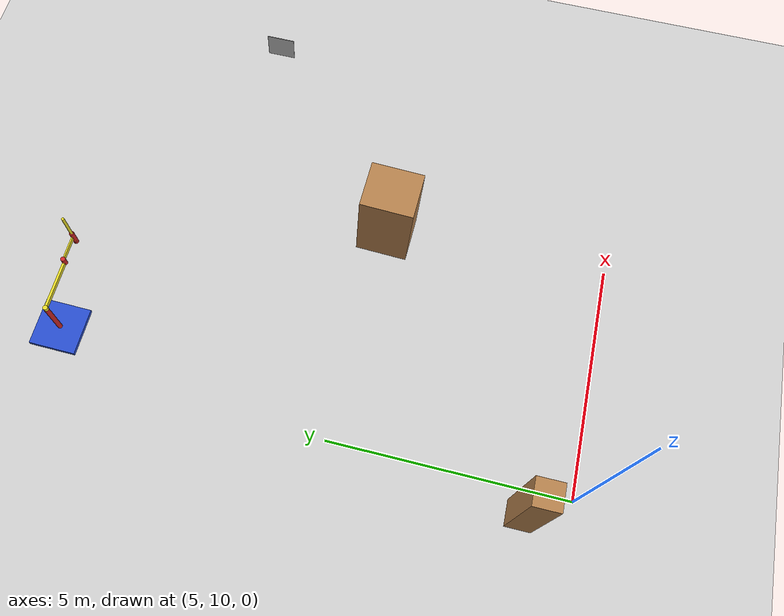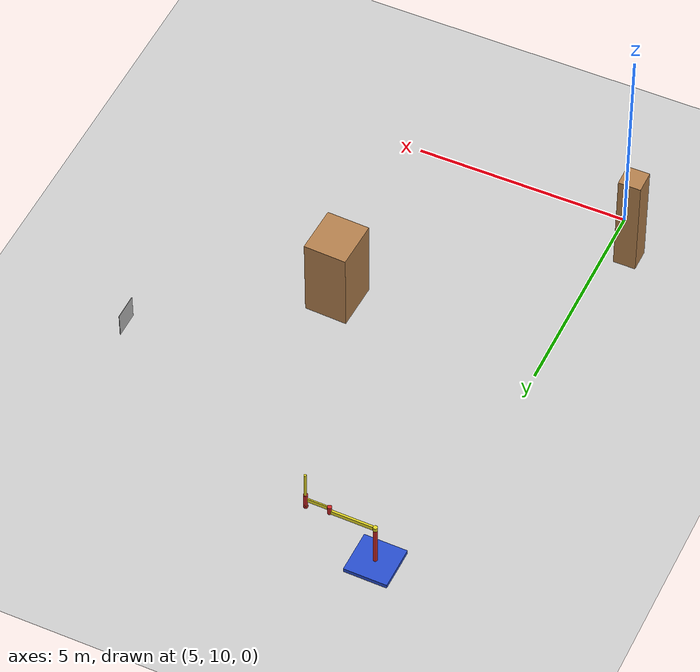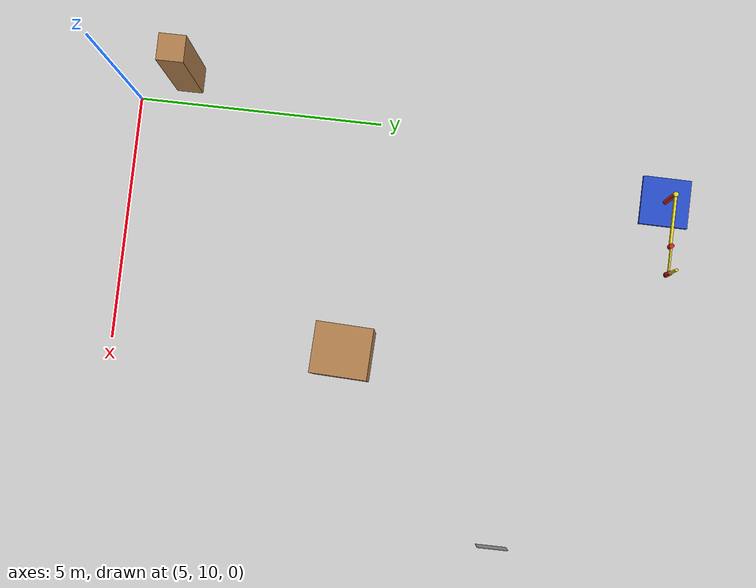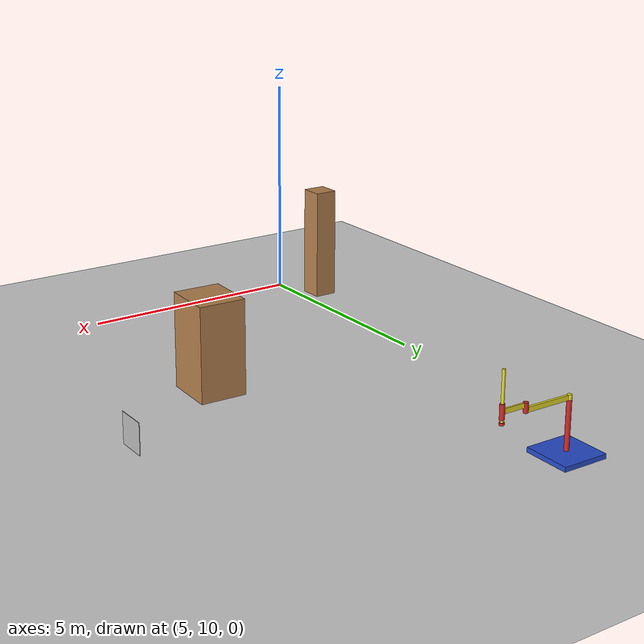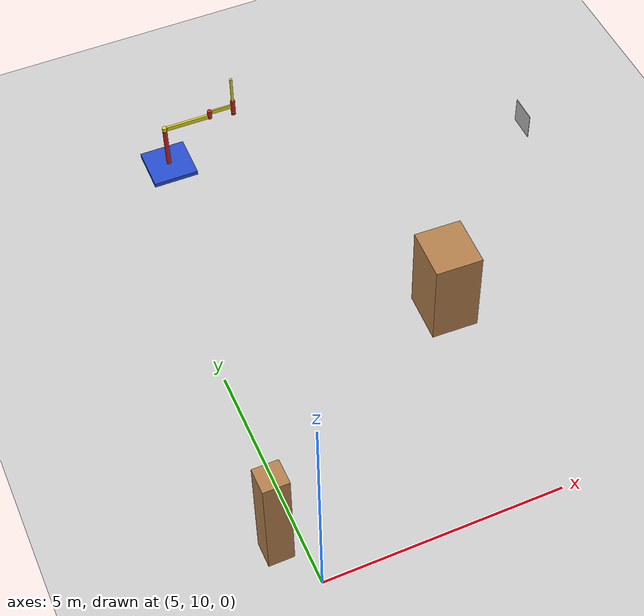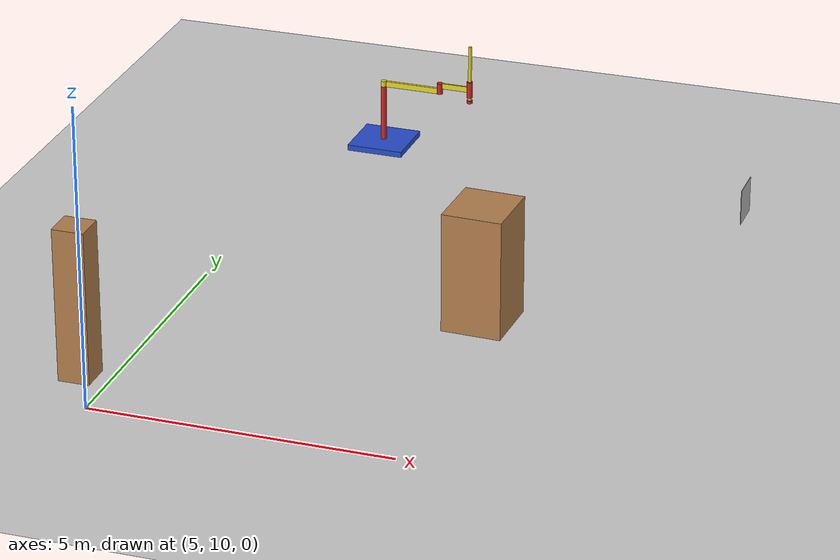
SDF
<sdf version="1.7">
 <world name="default">
  <model name="ground_plane">
   <static>1</static>
   <link name="link">
    <collision name="collision">
     <geometry><plane><normal>0 0 1</normal><size>25 25</size></plane></geometry>
     <surface><friction><ode><mu>100</mu><mu2>50</mu2></ode></friction></surface>
    </collision>
    <visual name="visual">
     <cast_shadows>0</cast_shadows>
     <geometry><plane><normal>0 0 1</normal><size>25 25</size></plane></geometry>
     <material>
      <script><uri>file://media/materials/scripts/gazebo.material</uri><name>Gazebo/Grey</name></script>
     </material>
    </visual>
   </link>
   <link name="startflag">
    <pose>0 0 0.115 0 -0 0</pose>
    <inertial>
     <mass>0.39</mass>
     <inertia><ixx>0.00058</ixx><ixy>0</ixy><ixz>0</ixz><iyy>0.00058</iyy><iyz>0</iyz><izz>0.00019</izz></inertia>
    </inertial>
    <collision name="collision"><geometry><box><size>1 1 0.01</size></box></geometry></collision>
    <visual name="visual">
     <geometry><box><size>1 1 0.01</size></box></geometry>
     <material>
      <script>
       <uri>model://apriltag/materials/scripts</uri>
       <uri>model://apriltag/materials/textures</uri>
       <name>startflag/Diffuse</name>
      </script>
     </material>
    </visual>
   </link>
  </model>
  <model name="unit_box_0_clone_0">
   <pose>4.48571 10.9785 1.29125 -2e-06 0 0.002903</pose>
   <link name="link">
    <inertial>
     <mass>1</mass>
     <inertia>
      <ixx>0.166667</ixx>
      <ixy>0</ixy>
      <ixz>0</ixz>
      <iyy>0.166667</iyy>
      <iyz>0</iyz>
      <izz>0.166667</izz>
     </inertia>
    </inertial>
    <collision name="collision"><geometry><box><size>0.52404 0.528614 2.5825</size></box></geometry></collision>
    <visual name="visual">
     <geometry><box><size>0.52404 0.528614 2.5825</size></box></geometry>
     <material>
      <script><uri>file://media/materials/scripts/gazebo.material</uri><name>Gazebo/Wood</name></script>
     </material>
    </visual>
   </link>
   <static>0</static>
  </model>
  <model name="static_apriltag_1">
   <link name="link">
    <pose>0 0 0 0 1.57 0</pose>
    <inertial>
     <mass>0.39</mass>
     <inertia><ixx>0.00058</ixx><ixy>0</ixy><ixz>0</ixz><iyy>0.00058</iyy><iyz>0</iyz><izz>0.00019</izz></inertia>
    </inertial>
    <collision name="collision"><geometry><box><size>0.6 0.6 0.01</size></box></geometry></collision>
    <visual name="visual">
     <geometry><box><size>0.6 0.6 0.01</size></box></geometry>
     <material>
      <script>
       <uri>model://apriltag/materials/scripts</uri>
       <uri>model://apriltag/materials/textures</uri>
       <name>apriltag/Diffuse1</name>
      </script>
     </material>
    </visual>
    <gravity>0</gravity>
   </link>
   <pose>13.2653 18.0901 1.2 0 -0 0</pose>
   <static>0</static>
   <pose>1.36256 0.459264 0 0 -0 0</pose>
  </model>
  <model name="simple_arm">
   <link name="arm_base">
    <inertial>
     <pose>0 0 0.00099 0 -0 0</pose>
     <inertia><ixx>1.11</ixx><ixy>0</ixy><ixz>0</ixz><iyy>100.11</iyy><iyz>0</iyz><izz>1.01</izz></inertia>
     <mass>101</mass>
    </inertial>
    <collision name="arm_base_geom">
     <pose>0 0 0.05 0 -0 0</pose>
     <geometry><box><size>1 1 0.1</size></box></geometry>
    </collision>
    <visual name="arm_base_geom_visual">
     <pose>0 0 0.05 0 -0 0</pose>
     <geometry><box><size>1 1 0.1</size></box></geometry>
     <material>
      <script><uri>file://media/materials/scripts/gazebo.material</uri><name>Gazebo/Blue</name></script>
     </material>
    </visual>
    <collision name="arm_base_geom_arm_trunk">
     <pose>0 0 0.6 0 -0 0</pose>
     <geometry><cylinder><radius>0.05</radius><length>1</length></cylinder></geometry>
    </collision>
    <visual name="arm_base_geom_arm_trunk_visual">
     <pose>0 0 0.6 0 -0 0</pose>
     <geometry><cylinder><radius>0.05</radius><length>1</length></cylinder></geometry>
     <material>
      <script><uri>file://media/materials/scripts/gazebo.material</uri><name>Gazebo/Red</name></script>
     </material>
    </visual>
   </link>
   <link name="arm_shoulder_pan">
    <pose>0 0 1.1 0 -0 0</pose>
    <inertial>
     <pose>0.045455 0 0 0 -0 0</pose>
     <inertia><ixx>0.011</ixx><ixy>0</ixy><ixz>0</ixz><iyy>0.0225</iyy><iyz>0</iyz><izz>0.0135</izz></inertia>
     <mass>1.1</mass>
    </inertial>
    <collision name="arm_shoulder_pan_geom">
     <pose>0 0 0.05 0 -0 0</pose>
     <geometry><cylinder><radius>0.05</radius><length>0.1</length></cylinder></geometry>
    </collision>
    <visual name="arm_shoulder_pan_geom_visual">
     <pose>0 0 0.05 0 -0 0</pose>
     <geometry><cylinder><radius>0.05</radius><length>0.1</length></cylinder></geometry>
     <material>
      <script><uri>file://media/materials/scripts/gazebo.material</uri><name>Gazebo/Yellow</name></script>
     </material>
    </visual>
    <collision name="arm_shoulder_pan_geom_arm_shoulder">
     <pose>0.55 0 0.05 0 -0 0</pose>
     <geometry><box><size>1 0.05 0.1</size></box></geometry>
    </collision>
    <visual name="arm_shoulder_pan_geom_arm_shoulder_visual">
     <pose>0.55 0 0.05 0 -0 0</pose>
     <geometry><box><size>1 0.05 0.1</size></box></geometry>
     <material>
      <script><uri>file://media/materials/scripts/gazebo.material</uri><name>Gazebo/Yellow</name></script>
     </material>
    </visual>
   </link>
   <link name="arm_elbow_pan">
    <pose>1.05 0 1.1 0 -0 0</pose>
    <inertial>
     <pose>0.0875 0 0.083333 0 -0 0</pose>
     <inertia>
      <ixx>0.031</ixx>
      <ixy>0</ixy>
      <ixz>0.005</ixz>
      <iyy>0.07275</iyy>
      <iyz>0</iyz>
      <izz>0.04475</izz>
     </inertia>
     <mass>1.2</mass>
    </inertial>
    <collision name="arm_elbow_pan_geom">
     <pose>0 0 0.1 0 -0 0</pose>
     <geometry><cylinder><radius>0.05</radius><length>0.2</length></cylinder></geometry>
    </collision>
    <visual name="arm_elbow_pan_geom_visual">
     <pose>0 0 0.1 0 -0 0</pose>
     <geometry><cylinder><radius>0.05</radius><length>0.2</length></cylinder></geometry>
     <material>
      <script><uri>file://media/materials/scripts/gazebo.material</uri><name>Gazebo/Red</name></script>
     </material>
    </visual>
    <collision name="arm_elbow_pan_geom_arm_elbow">
     <pose>0.3 0 0.15 0 -0 0</pose>
     <geometry><box><size>0.5 0.03 0.1</size></box></geometry>
    </collision>
    <visual name="arm_elbow_pan_geom_arm_elbow_visual">
     <pose>0.3 0 0.15 0 -0 0</pose>
     <geometry><box><size>0.5 0.03 0.1</size></box></geometry>
     <material>
      <script><uri>file://media/materials/scripts/gazebo.material</uri><name>Gazebo/Yellow</name></script>
     </material>
    </visual>
    <collision name="arm_elbow_pan_geom_arm_wrist">
     <pose>0.55 0 0.15 0 -0 0</pose>
     <geometry><cylinder><radius>0.05</radius><length>0.3</length></cylinder></geometry>
    </collision>
    <visual name="arm_elbow_pan_geom_arm_wrist_visual">
     <pose>0.55 0 0.15 0 -0 0</pose>
     <geometry><cylinder><radius>0.05</radius><length>0.3</length></cylinder></geometry>
     <material>
      <script><uri>file://media/materials/scripts/gazebo.material</uri><name>Gazebo/Red</name></script>
     </material>
    </visual>
   </link>
   <link name="arm_wrist_lift">
    <pose>1.6 0 1.05 0 -0 0</pose>
    <inertial>
     <inertia><ixx>0.01</ixx><ixy>0</ixy><ixz>0</ixz><iyy>0.01</iyy><iyz>0</iyz><izz>0.001</izz></inertia>
     <mass>0.1</mass>
    </inertial>
    <collision name="arm_wrist_lift_geom">
     <pose>0 0 0.5 0 -0 0</pose>
     <geometry><cylinder><radius>0.03</radius><length>1</length></cylinder></geometry>
    </collision>
    <visual name="arm_wrist_lift_geom_visual">
     <pose>0 0 0.5 0 -0 0</pose>
     <geometry><cylinder><radius>0.03</radius><length>1</length></cylinder></geometry>
     <material>
      <script><uri>file://media/materials/scripts/gazebo.material</uri><name>Gazebo/Yellow</name></script>
     </material>
    </visual>
   </link>
   <link name="arm_wrist_roll">
    <pose>1.6 0 1 0 -0 0</pose>
    <inertial>
     <inertia><ixx>0.01</ixx><ixy>0</ixy><ixz>0</ixz><iyy>0.01</iyy><iyz>0</iyz><izz>0.001</izz></inertia>
     <mass>0.1</mass>
    </inertial>
    <collision name="arm_wrist_roll_geom">
     <pose>0 0 0.025 0 -0 0</pose>
     <geometry><cylinder><radius>0.05</radius><length>0.05</length></cylinder></geometry>
    </collision>
    <visual name="arm_wrist_roll_geom_visual">
     <pose>0 0 0.025 0 -0 0</pose>
     <geometry><cylinder><radius>0.05</radius><length>0.05</length></cylinder></geometry>
     <material>
      <script><uri>file://media/materials/scripts/gazebo.material</uri><name>Gazebo/Red</name></script>
     </material>
    </visual>
   </link>
   <joint name="arm_shoulder_pan_joint" type="revolute">
    <parent>arm_base</parent>
    <child>arm_shoulder_pan</child>
    <axis>
     <dynamics>
      <damping>1</damping>
      <friction>0</friction>
      <spring_reference>0</spring_reference>
      <spring_stiffness>0</spring_stiffness>
     </dynamics>
     <xyz expressed_in="__model__">0 0 1</xyz>
     <limit><lower>-1e+16</lower><upper>1e+16</upper></limit>
    </axis>
   </joint>
   <joint name="arm_elbow_pan_joint" type="revolute">
    <parent>arm_shoulder_pan</parent>
    <child>arm_elbow_pan</child>
    <axis>
     <dynamics>
      <damping>1</damping>
      <friction>0</friction>
      <spring_reference>0</spring_reference>
      <spring_stiffness>0</spring_stiffness>
     </dynamics>
     <xyz expressed_in="__model__">0 0 1</xyz>
     <limit><lower>-1e+16</lower><upper>1e+16</upper></limit>
    </axis>
   </joint>
   <joint name="arm_wrist_lift_joint" type="prismatic">
    <parent>arm_elbow_pan</parent>
    <child>arm_wrist_lift</child>
    <axis>
     <dynamics>
      <damping>1</damping>
      <friction>0</friction>
      <spring_reference>0</spring_reference>
      <spring_stiffness>0</spring_stiffness>
     </dynamics>
     <limit><lower>-0.8</lower><upper>0.1</upper></limit>
     <xyz expressed_in="__model__">0 0 1</xyz>
    </axis>
   </joint>
   <joint name="arm_wrist_roll_joint" type="revolute">
    <parent>arm_wrist_lift</parent>
    <child>arm_wrist_roll</child>
    <axis>
     <dynamics>
      <damping>1</damping>
      <friction>0</friction>
      <spring_reference>0</spring_reference>
      <spring_stiffness>0</spring_stiffness>
     </dynamics>
     <limit><lower>-2.99999</lower><upper>2.99999</upper></limit>
     <xyz expressed_in="__model__">0 0 1</xyz>
    </axis>
   </joint>
   <pose>5.98679 21.007 -0 0 -0 -0.011459</pose>
  </model>
  <model name="unit_box_clone">
   <pose>9.81345 14.7988 1.01795 4e-06 -2e-06 -0.03791</pose>
   <link name="link">
    <inertial>
     <mass>1</mass>
     <inertia>
      <ixx>0.166667</ixx>
      <ixy>0</ixy>
      <ixz>0</ixz>
      <iyy>0.166667</iyy>
      <iyz>0</iyz>
      <izz>0.166667</izz>
     </inertia>
    </inertial>
    <collision name="collision"><geometry><box><size>1 1.11313 2.03591</size></box></geometry></collision>
    <visual name="visual">
     <geometry><box><size>1 1.11313 2.03591</size></box></geometry>
     <material>
      <script><uri>file://media/materials/scripts/gazebo.material</uri><name>Gazebo/Wood</name></script>
     </material>
    </visual>
   </link>
   <static>0</static>
  </model>
 </world>
</sdf>
